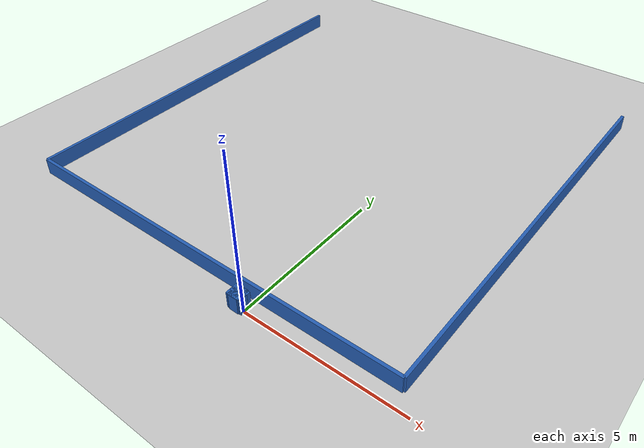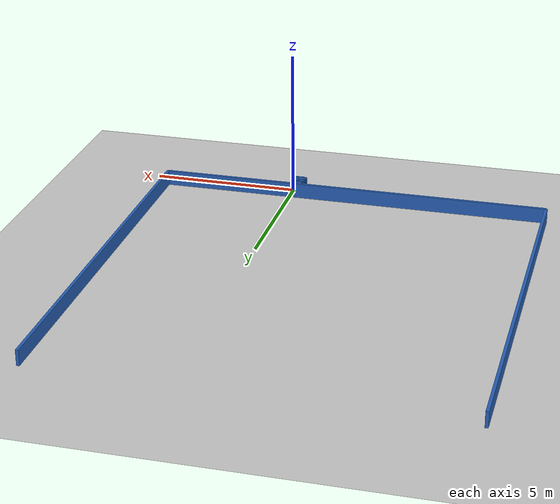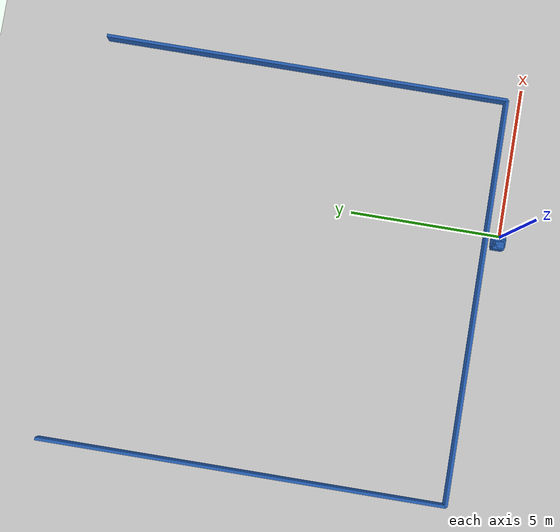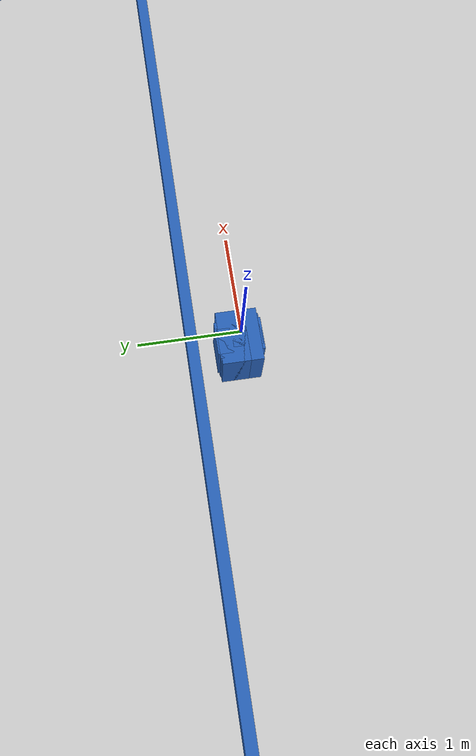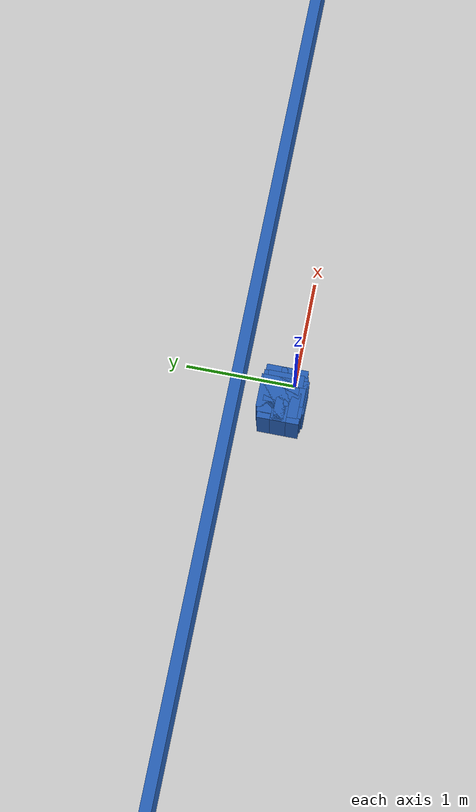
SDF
<?xml version="1.0" ?>
    <sdf version="1.5">
      <world name="default">
        <!-- A global light source -->
        <include>
          <uri>model://sun</uri>
        </include>
        <!-- A ground plane -->
        <include>
          <uri>model://ground_plane</uri>
        </include>

    <model name='libopen_space_final_T2B_126_78'>
      <static>1</static>
      <pose frame=''>-0.225000 0.075000 0.000000 0.000000 0.000000 0.000000</pose>
      <link name='link'>
        <inertial>
          <mass>1</mass>
          <inertia>
            <ixx>0.145833</ixx>
            <ixy>0</ixy>
            <ixz>0</ixz>
            <iyy>0.145833</iyy>
            <iyz>0</iyz>
            <izz>0.125</izz>
          </inertia>
        </inertial>
        <collision name='collision'>
          <geometry>
            <box>
              <size>0.49 0.14 1</size>
            </box>
          </geometry>
          <max_contacts>10</max_contacts>
          <surface>
            <contact>
              <ode/>
            </contact>
            <bounce/>
            <friction>
              <torsional>
                <ode/>
              </torsional>
              <ode/>
            </friction>
          </surface>
        </collision>
        <visual name='visual'>
          <geometry>
            <box>
              <size>0.49 0.14 1</size>
            </box>
          </geometry>
	    <material>
              <ambient>0.152000 0.379000 0.720000 1</ambient>
	      <diffuse>0.152000 0.379000 0.720000 1</diffuse>
          </material>
          <material>
            <script>
              <name>Gazebo/Grey</name>
              <uri>file://media/materials/scripts/gazebo.material</uri>
            </script>
          </material>
        </visual>
        <self_collide>0</self_collide>
        <kinematic>0</kinematic>
        <gravity>1</gravity>
      </link>
      <plugin name='libopen_space_final_T2B_126_78' filename='libopen_space_final_T2B_126_78.so'/>
    </model>

    <model name='libopen_space_final_T2B_105_38'>
      <static>1</static>
      <pose frame=''>-0.225000 0.075000 0.000000 0.000000 0.000000 0.000000</pose>
      <link name='link'>
        <inertial>
          <mass>1</mass>
          <inertia>
            <ixx>0.145833</ixx>
            <ixy>0</ixy>
            <ixz>0</ixz>
            <iyy>0.145833</iyy>
            <iyz>0</iyz>
            <izz>0.125</izz>
          </inertia>
        </inertial>
        <collision name='collision'>
          <geometry>
            <box>
              <size>0.30 0.39 1</size>
            </box>
          </geometry>
          <max_contacts>10</max_contacts>
          <surface>
            <contact>
              <ode/>
            </contact>
            <bounce/>
            <friction>
              <torsional>
                <ode/>
              </torsional>
              <ode/>
            </friction>
          </surface>
        </collision>
        <visual name='visual'>
          <geometry>
            <box>
              <size>0.30 0.39 1</size>
            </box>
          </geometry>
	    <material>
              <ambient>0.152000 0.379000 0.720000 1</ambient>
	      <diffuse>0.152000 0.379000 0.720000 1</diffuse>
          </material>
          <material>
            <script>
              <name>Gazebo/Grey</name>
              <uri>file://media/materials/scripts/gazebo.material</uri>
            </script>
          </material>
        </visual>
        <self_collide>0</self_collide>
        <kinematic>0</kinematic>
        <gravity>1</gravity>
      </link>
      <plugin name='libopen_space_final_T2B_105_38' filename='libopen_space_final_T2B_105_38.so'/>
    </model>

    <model name='libopen_space_final_T2B_84_5'>
      <static>1</static>
      <pose frame=''>-0.225000 0.075000 0.000000 0.000000 0.000000 0.000000</pose>
      <link name='link'>
        <inertial>
          <mass>1</mass>
          <inertia>
            <ixx>0.145833</ixx>
            <ixy>0</ixy>
            <ixz>0</ixz>
            <iyy>0.145833</iyy>
            <iyz>0</iyz>
            <izz>0.125</izz>
          </inertia>
        </inertial>
        <collision name='collision'>
          <geometry>
            <box>
              <size>0.16 0.27 1</size>
            </box>
          </geometry>
          <max_contacts>10</max_contacts>
          <surface>
            <contact>
              <ode/>
            </contact>
            <bounce/>
            <friction>
              <torsional>
                <ode/>
              </torsional>
              <ode/>
            </friction>
          </surface>
        </collision>
        <visual name='visual'>
          <geometry>
            <box>
              <size>0.16 0.27 1</size>
            </box>
          </geometry>
	    <material>
              <ambient>0.152000 0.379000 0.720000 1</ambient>
	      <diffuse>0.152000 0.379000 0.720000 1</diffuse>
          </material>
          <material>
            <script>
              <name>Gazebo/Grey</name>
              <uri>file://media/materials/scripts/gazebo.material</uri>
            </script>
          </material>
        </visual>
        <self_collide>0</self_collide>
        <kinematic>0</kinematic>
        <gravity>1</gravity>
      </link>
      <plugin name='libopen_space_final_T2B_84_5' filename='libopen_space_final_T2B_84_5.so'/>
    </model>

    <model name='libopen_space_final_T2B_55_44'>
      <static>1</static>
      <pose frame=''>-0.225000 0.075000 0.000000 0.000000 0.000000 0.000000</pose>
      <link name='link'>
        <inertial>
          <mass>1</mass>
          <inertia>
            <ixx>0.145833</ixx>
            <ixy>0</ixy>
            <ixz>0</ixz>
            <iyy>0.145833</iyy>
            <iyz>0</iyz>
            <izz>0.125</izz>
          </inertia>
        </inertial>
        <collision name='collision'>
          <geometry>
            <box>
              <size>0.21 0.40 1</size>
            </box>
          </geometry>
          <max_contacts>10</max_contacts>
          <surface>
            <contact>
              <ode/>
            </contact>
            <bounce/>
            <friction>
              <torsional>
                <ode/>
              </torsional>
              <ode/>
            </friction>
          </surface>
        </collision>
        <visual name='visual'>
          <geometry>
            <box>
              <size>0.21 0.40 1</size>
            </box>
          </geometry>
	    <material>
              <ambient>0.152000 0.379000 0.720000 1</ambient>
	      <diffuse>0.152000 0.379000 0.720000 1</diffuse>
          </material>
          <material>
            <script>
              <name>Gazebo/Grey</name>
              <uri>file://media/materials/scripts/gazebo.material</uri>
            </script>
          </material>
        </visual>
        <self_collide>0</self_collide>
        <kinematic>0</kinematic>
        <gravity>1</gravity>
      </link>
      <plugin name='libopen_space_final_T2B_55_44' filename='libopen_space_final_T2B_55_44.so'/>
    </model>

    <model name='libopen_space_final_T2B_52_49'>
      <static>1</static>
      <pose frame=''>-0.225000 0.075000 0.000000 0.000000 0.000000 0.000000</pose>
      <link name='link'>
        <inertial>
          <mass>1</mass>
          <inertia>
            <ixx>0.145833</ixx>
            <ixy>0</ixy>
            <ixz>0</ixz>
            <iyy>0.145833</iyy>
            <iyz>0</iyz>
            <izz>0.125</izz>
          </inertia>
        </inertial>
        <collision name='collision'>
          <geometry>
            <box>
              <size>0.46 0.13 1</size>
            </box>
          </geometry>
          <max_contacts>10</max_contacts>
          <surface>
            <contact>
              <ode/>
            </contact>
            <bounce/>
            <friction>
              <torsional>
                <ode/>
              </torsional>
              <ode/>
            </friction>
          </surface>
        </collision>
        <visual name='visual'>
          <geometry>
            <box>
              <size>0.46 0.13 1</size>
            </box>
          </geometry>
	    <material>
              <ambient>0.152000 0.379000 0.720000 1</ambient>
	      <diffuse>0.152000 0.379000 0.720000 1</diffuse>
          </material>
          <material>
            <script>
              <name>Gazebo/Grey</name>
              <uri>file://media/materials/scripts/gazebo.material</uri>
            </script>
          </material>
        </visual>
        <self_collide>0</self_collide>
        <kinematic>0</kinematic>
        <gravity>1</gravity>
      </link>
      <plugin name='libopen_space_final_T2B_52_49' filename='libopen_space_final_T2B_52_49.so'/>
    </model>

    <model name='libopen_space_final_T2B_109_60'>
      <static>1</static>
      <pose frame=''>-0.225000 0.075000 0.000000 0.000000 0.000000 0.000000</pose>
      <link name='link'>
        <inertial>
          <mass>1</mass>
          <inertia>
            <ixx>0.145833</ixx>
            <ixy>0</ixy>
            <ixz>0</ixz>
            <iyy>0.145833</iyy>
            <iyz>0</iyz>
            <izz>0.125</izz>
          </inertia>
        </inertial>
        <collision name='collision'>
          <geometry>
            <box>
              <size>0.39 0.32 1</size>
            </box>
          </geometry>
          <max_contacts>10</max_contacts>
          <surface>
            <contact>
              <ode/>
            </contact>
            <bounce/>
            <friction>
              <torsional>
                <ode/>
              </torsional>
              <ode/>
            </friction>
          </surface>
        </collision>
        <visual name='visual'>
          <geometry>
            <box>
              <size>0.39 0.32 1</size>
            </box>
          </geometry>
	    <material>
              <ambient>0.152000 0.379000 0.720000 1</ambient>
	      <diffuse>0.152000 0.379000 0.720000 1</diffuse>
          </material>
          <material>
            <script>
              <name>Gazebo/Grey</name>
              <uri>file://media/materials/scripts/gazebo.material</uri>
            </script>
          </material>
        </visual>
        <self_collide>0</self_collide>
        <kinematic>0</kinematic>
        <gravity>1</gravity>
      </link>
      <plugin name='libopen_space_final_T2B_109_60' filename='libopen_space_final_T2B_109_60.so'/>
    </model>

    <model name='libopen_space_final_T2B_91_29'>
      <static>1</static>
      <pose frame=''>-0.225000 0.075000 0.000000 0.000000 0.000000 0.000000</pose>
      <link name='link'>
        <inertial>
          <mass>1</mass>
          <inertia>
            <ixx>0.145833</ixx>
            <ixy>0</ixy>
            <ixz>0</ixz>
            <iyy>0.145833</iyy>
            <iyz>0</iyz>
            <izz>0.125</izz>
          </inertia>
        </inertial>
        <collision name='collision'>
          <geometry>
            <box>
              <size>0.48 0.10 1</size>
            </box>
          </geometry>
          <max_contacts>10</max_contacts>
          <surface>
            <contact>
              <ode/>
            </contact>
            <bounce/>
            <friction>
              <torsional>
                <ode/>
              </torsional>
              <ode/>
            </friction>
          </surface>
        </collision>
        <visual name='visual'>
          <geometry>
            <box>
              <size>0.48 0.10 1</size>
            </box>
          </geometry>
	    <material>
              <ambient>0.152000 0.379000 0.720000 1</ambient>
	      <diffuse>0.152000 0.379000 0.720000 1</diffuse>
          </material>
          <material>
            <script>
              <name>Gazebo/Grey</name>
              <uri>file://media/materials/scripts/gazebo.material</uri>
            </script>
          </material>
        </visual>
        <self_collide>0</self_collide>
        <kinematic>0</kinematic>
        <gravity>1</gravity>
      </link>
      <plugin name='libopen_space_final_T2B_91_29' filename='libopen_space_final_T2B_91_29.so'/>
    </model>

    <model name='libopen_space_final_T2B_90_15'>
      <static>1</static>
      <pose frame=''>-0.225000 0.075000 0.000000 0.000000 0.000000 0.000000</pose>
      <link name='link'>
        <inertial>
          <mass>1</mass>
          <inertia>
            <ixx>0.145833</ixx>
            <ixy>0</ixy>
            <ixz>0</ixz>
            <iyy>0.145833</iyy>
            <iyz>0</iyz>
            <izz>0.125</izz>
          </inertia>
        </inertial>
        <collision name='collision'>
          <geometry>
            <box>
              <size>0.38 0.39 1</size>
            </box>
          </geometry>
          <max_contacts>10</max_contacts>
          <surface>
            <contact>
              <ode/>
            </contact>
            <bounce/>
            <friction>
              <torsional>
                <ode/>
              </torsional>
              <ode/>
            </friction>
          </surface>
        </collision>
        <visual name='visual'>
          <geometry>
            <box>
              <size>0.38 0.39 1</size>
            </box>
          </geometry>
	    <material>
              <ambient>0.152000 0.379000 0.720000 1</ambient>
	      <diffuse>0.152000 0.379000 0.720000 1</diffuse>
          </material>
          <material>
            <script>
              <name>Gazebo/Grey</name>
              <uri>file://media/materials/scripts/gazebo.material</uri>
            </script>
          </material>
        </visual>
        <self_collide>0</self_collide>
        <kinematic>0</kinematic>
        <gravity>1</gravity>
      </link>
      <plugin name='libopen_space_final_T2B_90_15' filename='libopen_space_final_T2B_90_15.so'/>
    </model>

    <model name='libopen_space_final_T2B_57_10'>
      <static>1</static>
      <pose frame=''>-0.225000 0.075000 0.000000 0.000000 0.000000 0.000000</pose>
      <link name='link'>
        <inertial>
          <mass>1</mass>
          <inertia>
            <ixx>0.145833</ixx>
            <ixy>0</ixy>
            <ixz>0</ixz>
            <iyy>0.145833</iyy>
            <iyz>0</iyz>
            <izz>0.125</izz>
          </inertia>
        </inertial>
        <collision name='collision'>
          <geometry>
            <box>
              <size>0.17 0.32 1</size>
            </box>
          </geometry>
          <max_contacts>10</max_contacts>
          <surface>
            <contact>
              <ode/>
            </contact>
            <bounce/>
            <friction>
              <torsional>
                <ode/>
              </torsional>
              <ode/>
            </friction>
          </surface>
        </collision>
        <visual name='visual'>
          <geometry>
            <box>
              <size>0.17 0.32 1</size>
            </box>
          </geometry>
	    <material>
              <ambient>0.152000 0.379000 0.720000 1</ambient>
	      <diffuse>0.152000 0.379000 0.720000 1</diffuse>
          </material>
          <material>
            <script>
              <name>Gazebo/Grey</name>
              <uri>file://media/materials/scripts/gazebo.material</uri>
            </script>
          </material>
        </visual>
        <self_collide>0</self_collide>
        <kinematic>0</kinematic>
        <gravity>1</gravity>
      </link>
      <plugin name='libopen_space_final_T2B_57_10' filename='libopen_space_final_T2B_57_10.so'/>
    </model>

    <model name='libopen_space_final_T2B_112_28'>
      <static>1</static>
      <pose frame=''>-0.225000 0.075000 0.000000 0.000000 0.000000 0.000000</pose>
      <link name='link'>
        <inertial>
          <mass>1</mass>
          <inertia>
            <ixx>0.145833</ixx>
            <ixy>0</ixy>
            <ixz>0</ixz>
            <iyy>0.145833</iyy>
            <iyz>0</iyz>
            <izz>0.125</izz>
          </inertia>
        </inertial>
        <collision name='collision'>
          <geometry>
            <box>
              <size>0.49 0.37 1</size>
            </box>
          </geometry>
          <max_contacts>10</max_contacts>
          <surface>
            <contact>
              <ode/>
            </contact>
            <bounce/>
            <friction>
              <torsional>
                <ode/>
              </torsional>
              <ode/>
            </friction>
          </surface>
        </collision>
        <visual name='visual'>
          <geometry>
            <box>
              <size>0.49 0.37 1</size>
            </box>
          </geometry>
	    <material>
              <ambient>0.152000 0.379000 0.720000 1</ambient>
	      <diffuse>0.152000 0.379000 0.720000 1</diffuse>
          </material>
          <material>
            <script>
              <name>Gazebo/Grey</name>
              <uri>file://media/materials/scripts/gazebo.material</uri>
            </script>
          </material>
        </visual>
        <self_collide>0</self_collide>
        <kinematic>0</kinematic>
        <gravity>1</gravity>
      </link>
      <plugin name='libopen_space_final_T2B_112_28' filename='libopen_space_final_T2B_112_28.so'/>
    </model>

    <model name='libopen_space_final_T2B_100_36'>
      <static>1</static>
      <pose frame=''>-0.225000 0.075000 0.000000 0.000000 0.000000 0.000000</pose>
      <link name='link'>
        <inertial>
          <mass>1</mass>
          <inertia>
            <ixx>0.145833</ixx>
            <ixy>0</ixy>
            <ixz>0</ixz>
            <iyy>0.145833</iyy>
            <iyz>0</iyz>
            <izz>0.125</izz>
          </inertia>
        </inertial>
        <collision name='collision'>
          <geometry>
            <box>
              <size>0.17 0.38 1</size>
            </box>
          </geometry>
          <max_contacts>10</max_contacts>
          <surface>
            <contact>
              <ode/>
            </contact>
            <bounce/>
            <friction>
              <torsional>
                <ode/>
              </torsional>
              <ode/>
            </friction>
          </surface>
        </collision>
        <visual name='visual'>
          <geometry>
            <box>
              <size>0.17 0.38 1</size>
            </box>
          </geometry>
	    <material>
              <ambient>0.152000 0.379000 0.720000 1</ambient>
	      <diffuse>0.152000 0.379000 0.720000 1</diffuse>
          </material>
          <material>
            <script>
              <name>Gazebo/Grey</name>
              <uri>file://media/materials/scripts/gazebo.material</uri>
            </script>
          </material>
        </visual>
        <self_collide>0</self_collide>
        <kinematic>0</kinematic>
        <gravity>1</gravity>
      </link>
      <plugin name='libopen_space_final_T2B_100_36' filename='libopen_space_final_T2B_100_36.so'/>
    </model>

    <model name='libopen_space_final_T2B_121_6'>
      <static>1</static>
      <pose frame=''>-0.225000 0.075000 0.000000 0.000000 0.000000 0.000000</pose>
      <link name='link'>
        <inertial>
          <mass>1</mass>
          <inertia>
            <ixx>0.145833</ixx>
            <ixy>0</ixy>
            <ixz>0</ixz>
            <iyy>0.145833</iyy>
            <iyz>0</iyz>
            <izz>0.125</izz>
          </inertia>
        </inertial>
        <collision name='collision'>
          <geometry>
            <box>
              <size>0.30 0.42 1</size>
            </box>
          </geometry>
          <max_contacts>10</max_contacts>
          <surface>
            <contact>
              <ode/>
            </contact>
            <bounce/>
            <friction>
              <torsional>
                <ode/>
              </torsional>
              <ode/>
            </friction>
          </surface>
        </collision>
        <visual name='visual'>
          <geometry>
            <box>
              <size>0.30 0.42 1</size>
            </box>
          </geometry>
	    <material>
              <ambient>0.152000 0.379000 0.720000 1</ambient>
	      <diffuse>0.152000 0.379000 0.720000 1</diffuse>
          </material>
          <material>
            <script>
              <name>Gazebo/Grey</name>
              <uri>file://media/materials/scripts/gazebo.material</uri>
            </script>
          </material>
        </visual>
        <self_collide>0</self_collide>
        <kinematic>0</kinematic>
        <gravity>1</gravity>
      </link>
      <plugin name='libopen_space_final_T2B_121_6' filename='libopen_space_final_T2B_121_6.so'/>
    </model>

    <model name='libopen_space_final_T2B_139_84'>
      <static>1</static>
      <pose frame=''>-0.225000 0.075000 0.000000 0.000000 0.000000 0.000000</pose>
      <link name='link'>
        <inertial>
          <mass>1</mass>
          <inertia>
            <ixx>0.145833</ixx>
            <ixy>0</ixy>
            <ixz>0</ixz>
            <iyy>0.145833</iyy>
            <iyz>0</iyz>
            <izz>0.125</izz>
          </inertia>
        </inertial>
        <collision name='collision'>
          <geometry>
            <box>
              <size>0.20 0.13 1</size>
            </box>
          </geometry>
          <max_contacts>10</max_contacts>
          <surface>
            <contact>
              <ode/>
            </contact>
            <bounce/>
            <friction>
              <torsional>
                <ode/>
              </torsional>
              <ode/>
            </friction>
          </surface>
        </collision>
        <visual name='visual'>
          <geometry>
            <box>
              <size>0.20 0.13 1</size>
            </box>
          </geometry>
	    <material>
              <ambient>0.152000 0.379000 0.720000 1</ambient>
	      <diffuse>0.152000 0.379000 0.720000 1</diffuse>
          </material>
          <material>
            <script>
              <name>Gazebo/Grey</name>
              <uri>file://media/materials/scripts/gazebo.material</uri>
            </script>
          </material>
        </visual>
        <self_collide>0</self_collide>
        <kinematic>0</kinematic>
        <gravity>1</gravity>
      </link>
      <plugin name='libopen_space_final_T2B_139_84' filename='libopen_space_final_T2B_139_84.so'/>
    </model>

    <model name='libopen_space_final_T2B_71_69'>
      <static>1</static>
      <pose frame=''>-0.225000 0.075000 0.000000 0.000000 0.000000 0.000000</pose>
      <link name='link'>
        <inertial>
          <mass>1</mass>
          <inertia>
            <ixx>0.145833</ixx>
            <ixy>0</ixy>
            <ixz>0</ixz>
            <iyy>0.145833</iyy>
            <iyz>0</iyz>
            <izz>0.125</izz>
          </inertia>
        </inertial>
        <collision name='collision'>
          <geometry>
            <box>
              <size>0.27 0.25 1</size>
            </box>
          </geometry>
          <max_contacts>10</max_contacts>
          <surface>
            <contact>
              <ode/>
            </contact>
            <bounce/>
            <friction>
              <torsional>
                <ode/>
              </torsional>
              <ode/>
            </friction>
          </surface>
        </collision>
        <visual name='visual'>
          <geometry>
            <box>
              <size>0.27 0.25 1</size>
            </box>
          </geometry>
	    <material>
              <ambient>0.152000 0.379000 0.720000 1</ambient>
	      <diffuse>0.152000 0.379000 0.720000 1</diffuse>
          </material>
          <material>
            <script>
              <name>Gazebo/Grey</name>
              <uri>file://media/materials/scripts/gazebo.material</uri>
            </script>
          </material>
        </visual>
        <self_collide>0</self_collide>
        <kinematic>0</kinematic>
        <gravity>1</gravity>
      </link>
      <plugin name='libopen_space_final_T2B_71_69' filename='libopen_space_final_T2B_71_69.so'/>
    </model>

        <model name='bottom_wall'>
          <static>1</static>
          <pose frame=''>-2.25 0.5 0.000000 0.000000 0.000000 1.57079632</pose>
          <link name='link'>
            <inertial>
            <mass>1</mass>
            <inertia>
              <ixx>0.145833</ixx>
              <ixy>0</ixy>
              <ixz>0</ixz>
              <iyy>0.145833</iyy>
              <iyz>0</iyz>
              <izz>0.125</izz>
            </inertia>
            </inertial>
            <collision name='collision'>
            <geometry>
              <box>
              <size>0.1 13.5 1</size>
              </box>
            </geometry>
            <max_contacts>10</max_contacts>
            <surface>
              <contact>
              <ode/>
              </contact>
              <bounce/>
              <friction>
              <torsional>
                <ode/>
              </torsional>
              <ode/>
              </friction>
            </surface>
            </collision>
            <visual name='visual'>
            <geometry>
              <box>
              <size>0.1 13.5 1</size>
              </box>
            </geometry>
            <material>
              <ambient>0.152000 0.379000 0.720000 1</ambient>
            <diffuse>0.152000 0.379000 0.720000 1</diffuse>
            </material>
            <material>
              <script>
              <name>Gazebo/Grey</name>
              <uri>file://media/materials/scripts/gazebo.material</uri>
              </script>
            </material>
            </visual>
            <self_collide>0</self_collide>
            <kinematic>0</kinematic>
            <gravity>1</gravity>
          </link>
        </model>

        <model name='left_wall'>
          <static>1</static>
          <pose frame=''>-9 7.25 0.000000 0.000000 0.000000 0.000000</pose>
          <link name='link'>
            <inertial>
            <mass>1</mass>
            <inertia>
              <ixx>0.145833</ixx>
              <ixy>0</ixy>
              <ixz>0</ixz>
              <iyy>0.145833</iyy>
              <iyz>0</iyz>
              <izz>0.125</izz>
            </inertia>
            </inertial>
            <collision name='collision'>
            <geometry>
              <box>
              <size>0.1 13.5 1</size>
              </box>
            </geometry>
            <max_contacts>10</max_contacts>
            <surface>
              <contact>
              <ode/>
              </contact>
              <bounce/>
              <friction>
              <torsional>
                <ode/>
              </torsional>
              <ode/>
              </friction>
            </surface>
            </collision>
            <visual name='visual'>
            <geometry>
              <box>
              <size>0.1 13.5 1</size>
              </box>
            </geometry>
            <material>
              <ambient>0.152000 0.379000 0.720000 1</ambient>
            <diffuse>0.152000 0.379000 0.720000 1</diffuse>
            </material>
            <material>
              <script>
              <name>Gazebo/Grey</name>
              <uri>file://media/materials/scripts/gazebo.material</uri>
              </script>
            </material>
            </visual>
            <self_collide>0</self_collide>
            <kinematic>0</kinematic>
            <gravity>1</gravity>
          </link>
        </model>

        <model name='right_wall'>
          <static>1</static>
          <pose frame=''>4.5 7.25 0.000000 0.000000 0.000000 0.000000</pose>
          <link name='link'>
            <inertial>
            <mass>1</mass>
            <inertia>
              <ixx>0.145833</ixx>
              <ixy>0</ixy>
              <ixz>0</ixz>
              <iyy>0.145833</iyy>
              <iyz>0</iyz>
              <izz>0.125</izz>
            </inertia>
            </inertial>
            <collision name='collision'>
            <geometry>
              <box>
              <size>0.1 13.5 1</size>
              </box>
            </geometry>
            <max_contacts>10</max_contacts>
            <surface>
              <contact>
              <ode/>
              </contact>
              <bounce/>
              <friction>
              <torsional>
                <ode/>
              </torsional>
              <ode/>
              </friction>
            </surface>
            </collision>
            <visual name='visual'>
            <geometry>
              <box>
              <size>0.1 13.5 1</size>
              </box>
            </geometry>
            <material>
              <ambient>0.152000 0.379000 0.720000 1</ambient>
            <diffuse>0.152000 0.379000 0.720000 1</diffuse>
            </material>
            <material>
              <script>
              <name>Gazebo/Grey</name>
              <uri>file://media/materials/scripts/gazebo.material</uri>
              </script>
            </material>
            </visual>
            <self_collide>0</self_collide>
            <kinematic>0</kinematic>
            <gravity>1</gravity>
          </link>
        </model>

      </world>
    </sdf>"
